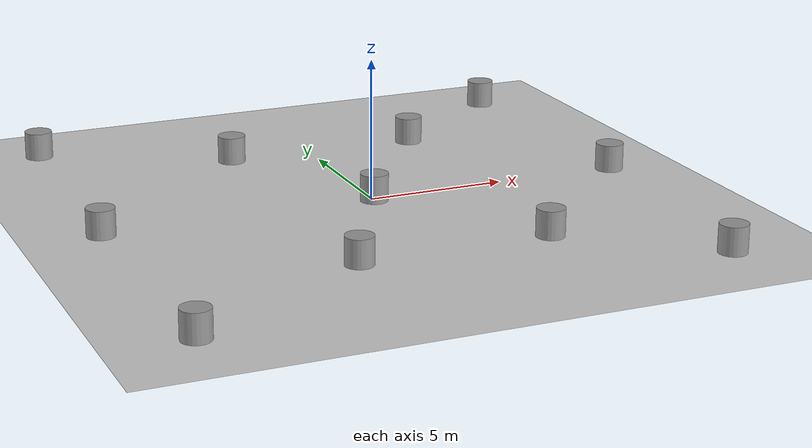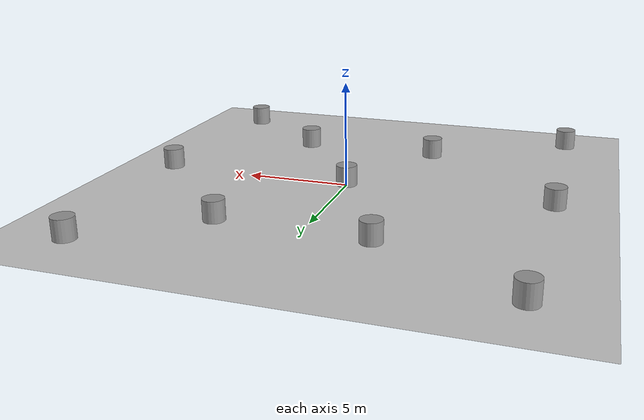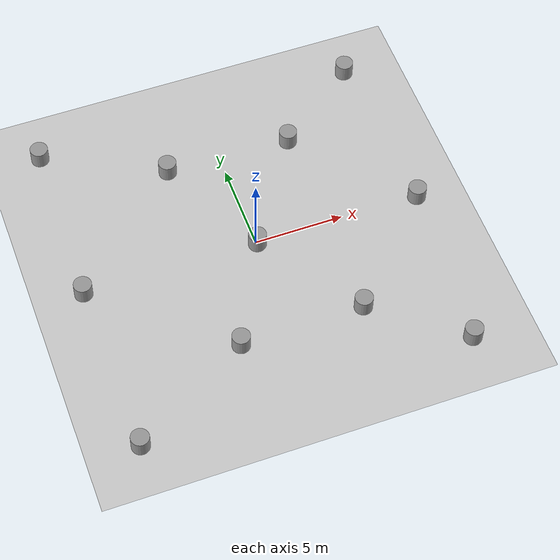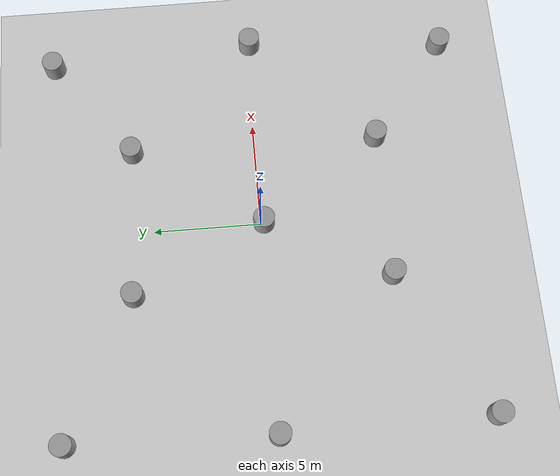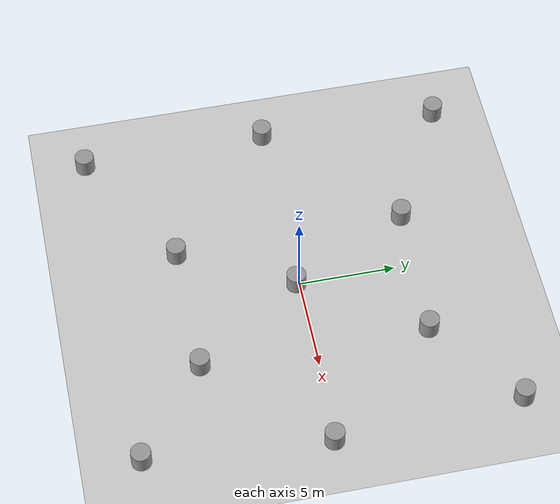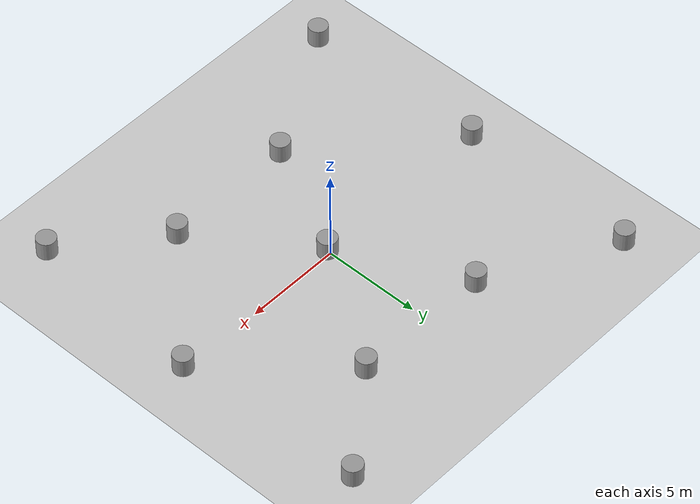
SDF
<sdf version="1.7">
 <world name="default">
  <light name="sun" type="directional">
   <pose>0 0 10 0 -0 0</pose>
   <diffuse>0.8 0.8 0.8 1</diffuse>
   <specular>0.2 0.2 0.2 1</specular>
   <attenuation>
    <range>1000</range>
    <constant>0.9</constant>
    <linear>0.01</linear>
    <quadratic>0.001</quadratic>
   </attenuation>
   <direction>-0.5 0.1 -0.9</direction>
   <spot><inner_angle>0</inner_angle><outer_angle>0</outer_angle><falloff>0</falloff></spot>
  </light>
  <model name="ground_plane">
   <static>1</static>
   <link name="link">
    <collision name="collision">
     <geometry><plane><normal>0 0 1</normal><size>100 100</size></plane></geometry>
     <surface><friction><ode><mu>100</mu><mu2>50</mu2></ode></friction></surface>
    </collision>
    <visual name="visual">
     <cast_shadows>0</cast_shadows>
     <geometry><plane><normal>0 0 1</normal><size>100 100</size></plane></geometry>
     <material>
      <script><uri>file://media/materials/scripts/gazebo.material</uri><name>Gazebo/Grey</name></script>
     </material>
    </visual>
   </link>
  </model>
  <gravity>0 0 -9.8</gravity>
  <magnetic_field>6e-06 2.3e-05 -4.2e-05</magnetic_field>
  <atmosphere type="adiabatic"/>
  <physics type="ode">
   <max_step_size>0.01</max_step_size>
   <real_time_factor>1</real_time_factor>
   <real_time_update_rate>100</real_time_update_rate>
  </physics>
  <scene><ambient>0.4 0.4 0.4 1</ambient><background>0.7 0.7 0.7 1</background><shadows>1</shadows></scene>
  <spherical_coordinates>
   <surface_model>EARTH_WGS84</surface_model>
   <latitude_deg>0</latitude_deg>
   <longitude_deg>0</longitude_deg>
   <elevation>0</elevation>
   <heading_deg>0</heading_deg>
  </spherical_coordinates>
  <model name="unit_cylinder">
   <pose>3.95681 -5.83359 0.499789 0.000361 0.000476 -0.135834</pose>
   <link name="link">
    <inertial>
     <mass>1</mass>
     <inertia><ixx>0.145833</ixx><ixy>0</ixy><ixz>0</ixz><iyy>0.145833</iyy><iyz>0</iyz><izz>0.125</izz></inertia>
    </inertial>
    <collision name="collision">
     <geometry><cylinder><radius>0.5</radius><length>1</length></cylinder></geometry>
    </collision>
    <visual name="visual">
     <geometry><cylinder><radius>0.5</radius><length>1</length></cylinder></geometry>
     <material>
      <script><name>Gazebo/Grey</name><uri>file://media/materials/scripts/gazebo.material</uri></script>
     </material>
    </visual>
   </link>
  </model>
  <model name="unit_cylinder_0">
   <pose>0.038353 -0.162321 0.499824 -0.000252 -0.000247 0.010179</pose>
   <link name="link">
    <inertial>
     <mass>1</mass>
     <inertia><ixx>0.145833</ixx><ixy>0</ixy><ixz>0</ixz><iyy>0.145833</iyy><iyz>0</iyz><izz>0.125</izz></inertia>
    </inertial>
    <collision name="collision">
     <geometry><cylinder><radius>0.5</radius><length>1</length></cylinder></geometry>
    </collision>
    <visual name="visual">
     <geometry><cylinder><radius>0.5</radius><length>1</length></cylinder></geometry>
     <material>
      <script><name>Gazebo/Grey</name><uri>file://media/materials/scripts/gazebo.material</uri></script>
     </material>
    </visual>
   </link>
  </model>
  <model name="unit_cylinder_2">
   <pose>9.3976 -0.170939 0.499096 4.8e-05 4.8e-05 -6.8e-05</pose>
   <link name="link">
    <inertial>
     <mass>1</mass>
     <inertia><ixx>0.145833</ixx><ixy>0</ixy><ixz>0</ixz><iyy>0.145833</iyy><iyz>0</iyz><izz>0.125</izz></inertia>
    </inertial>
    <collision name="collision">
     <geometry><cylinder><radius>0.5</radius><length>1</length></cylinder></geometry>
    </collision>
    <visual name="visual">
     <geometry><cylinder><radius>0.5</radius><length>1</length></cylinder></geometry>
     <material>
      <script><name>Gazebo/Grey</name><uri>file://media/materials/scripts/gazebo.material</uri></script>
     </material>
    </visual>
   </link>
  </model>
  <model name="unit_cylinder_1">
   <pose>4.0327 5.84623 0.499824 -0.000257 -0.000242 0.030026</pose>
   <link name="link">
    <inertial>
     <mass>1</mass>
     <inertia><ixx>0.145833</ixx><ixy>0</ixy><ixz>0</ixz><iyy>0.145833</iyy><iyz>0</iyz><izz>0.125</izz></inertia>
    </inertial>
    <collision name="collision">
     <geometry><cylinder><radius>0.5</radius><length>1</length></cylinder></geometry>
    </collision>
    <visual name="visual">
     <geometry><cylinder><radius>0.5</radius><length>1</length></cylinder></geometry>
     <material>
      <script><name>Gazebo/Grey</name><uri>file://media/materials/scripts/gazebo.material</uri></script>
     </material>
    </visual>
   </link>
  </model>
  <model name="unit_cylinder_3">
   <pose>8.85969 9.47372 0.499096 4.8e-05 4.8e-05 -5.8e-05</pose>
   <link name="link">
    <inertial>
     <mass>1</mass>
     <inertia><ixx>0.145833</ixx><ixy>0</ixy><ixz>0</ixz><iyy>0.145833</iyy><iyz>0</iyz><izz>0.125</izz></inertia>
    </inertial>
    <collision name="collision">
     <geometry><cylinder><radius>0.5</radius><length>1</length></cylinder></geometry>
    </collision>
    <visual name="visual">
     <geometry><cylinder><radius>0.5</radius><length>1</length></cylinder></geometry>
     <material>
      <script><name>Gazebo/Grey</name><uri>file://media/materials/scripts/gazebo.material</uri></script>
     </material>
    </visual>
   </link>
  </model>
  <model name="unit_cylinder_4">
   <pose>8.65917 -9.50466 0.499824 -0.000249 -0.000249 -5.6e-05</pose>
   <link name="link">
    <inertial>
     <mass>1</mass>
     <inertia><ixx>0.145833</ixx><ixy>0</ixy><ixz>0</ixz><iyy>0.145833</iyy><iyz>0</iyz><izz>0.125</izz></inertia>
    </inertial>
    <collision name="collision">
     <geometry><cylinder><radius>0.5</radius><length>1</length></cylinder></geometry>
    </collision>
    <visual name="visual">
     <geometry><cylinder><radius>0.5</radius><length>1</length></cylinder></geometry>
     <material>
      <script><name>Gazebo/Grey</name><uri>file://media/materials/scripts/gazebo.material</uri></script>
     </material>
    </visual>
   </link>
  </model>
  <model name="unit_cylinder_5">
   <pose>-9.63957 -9.71784 0.499824 -0.000249 -0.000249 -4.6e-05</pose>
   <link name="link">
    <inertial>
     <mass>1</mass>
     <inertia><ixx>0.145833</ixx><ixy>0</ixy><ixz>0</ixz><iyy>0.145833</iyy><iyz>0</iyz><izz>0.125</izz></inertia>
    </inertial>
    <collision name="collision">
     <geometry><cylinder><radius>0.5</radius><length>1</length></cylinder></geometry>
    </collision>
    <visual name="visual">
     <geometry><cylinder><radius>0.5</radius><length>1</length></cylinder></geometry>
     <material>
      <script><name>Gazebo/Grey</name><uri>file://media/materials/scripts/gazebo.material</uri></script>
     </material>
    </visual>
   </link>
  </model>
  <model name="unit_cylinder_6">
   <pose>-9.50694 9.35198 0.49912 0 0 -4.6e-05</pose>
   <link name="link">
    <inertial>
     <mass>1</mass>
     <inertia><ixx>0.145833</ixx><ixy>0</ixy><ixz>0</ixz><iyy>0.145833</iyy><iyz>0</iyz><izz>0.125</izz></inertia>
    </inertial>
    <collision name="collision">
     <geometry><cylinder><radius>0.5</radius><length>1</length></cylinder></geometry>
    </collision>
    <visual name="visual">
     <geometry><cylinder><radius>0.5</radius><length>1</length></cylinder></geometry>
     <material>
      <script><name>Gazebo/Grey</name><uri>file://media/materials/scripts/gazebo.material</uri></script>
     </material>
    </visual>
   </link>
  </model>
  <model name="unit_cylinder_7">
   <pose>-9.7627 -0.06869 0.499824 -0.000249 -0.000249 -4.4e-05</pose>
   <link name="link">
    <inertial>
     <mass>1</mass>
     <inertia><ixx>0.145833</ixx><ixy>0</ixy><ixz>0</ixz><iyy>0.145833</iyy><iyz>0</iyz><izz>0.125</izz></inertia>
    </inertial>
    <collision name="collision">
     <geometry><cylinder><radius>0.5</radius><length>1</length></cylinder></geometry>
    </collision>
    <visual name="visual">
     <geometry><cylinder><radius>0.5</radius><length>1</length></cylinder></geometry>
     <material>
      <script><name>Gazebo/Grey</name><uri>file://media/materials/scripts/gazebo.material</uri></script>
     </material>
    </visual>
   </link>
  </model>
  <model name="unit_cylinder_8">
   <pose>-3.04321 6.0655 0.49912 0 0 -4.3e-05</pose>
   <link name="link">
    <inertial>
     <mass>1</mass>
     <inertia><ixx>0.145833</ixx><ixy>0</ixy><ixz>0</ixz><iyy>0.145833</iyy><iyz>0</iyz><izz>0.125</izz></inertia>
    </inertial>
    <collision name="collision">
     <geometry><cylinder><radius>0.5</radius><length>1</length></cylinder></geometry>
    </collision>
    <visual name="visual">
     <geometry><cylinder><radius>0.5</radius><length>1</length></cylinder></geometry>
     <material>
      <script><name>Gazebo/Grey</name><uri>file://media/materials/scripts/gazebo.material</uri></script>
     </material>
    </visual>
   </link>
  </model>
  <model name="unit_cylinder_10">
   <pose>-2.9254 -5.88483 0.499789 0.000422 0.000422 -4.1e-05</pose>
   <link name="link">
    <inertial>
     <mass>1</mass>
     <inertia><ixx>0.145833</ixx><ixy>0</ixy><ixz>0</ixz><iyy>0.145833</iyy><iyz>0</iyz><izz>0.125</izz></inertia>
    </inertial>
    <collision name="collision">
     <geometry><cylinder><radius>0.5</radius><length>1</length></cylinder></geometry>
    </collision>
    <visual name="visual">
     <geometry><cylinder><radius>0.5</radius><length>1</length></cylinder></geometry>
     <material>
      <script><name>Gazebo/Grey</name><uri>file://media/materials/scripts/gazebo.material</uri></script>
     </material>
    </visual>
   </link>
  </model>
 </world>
</sdf>
